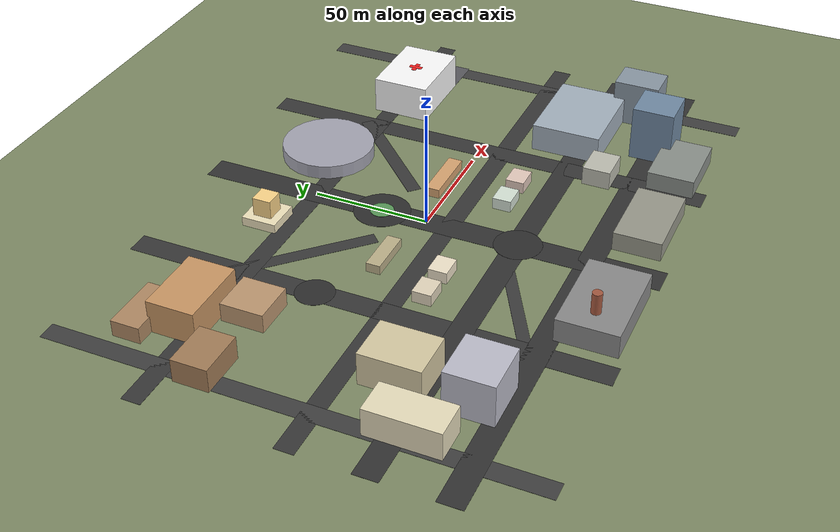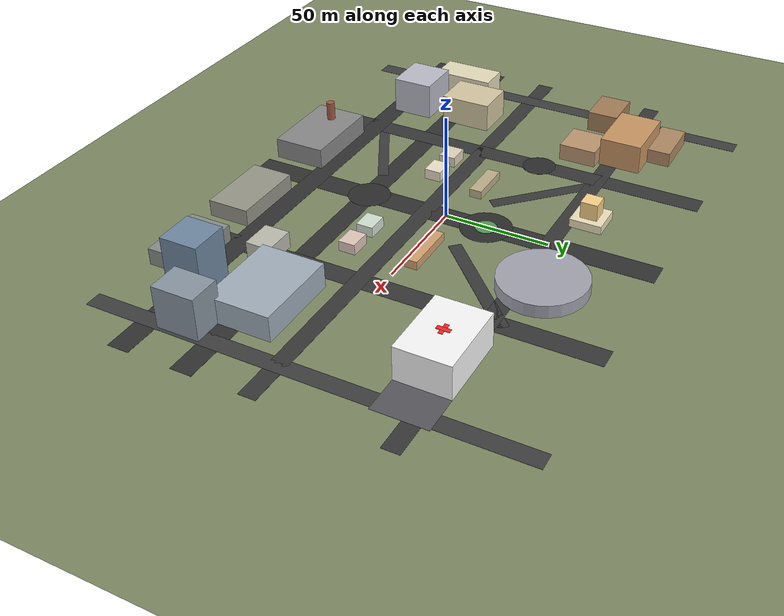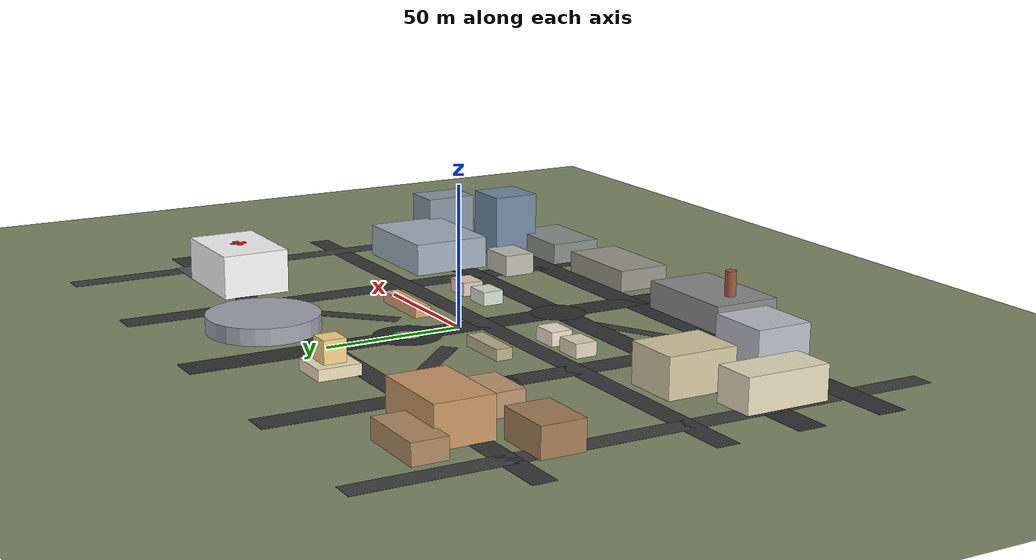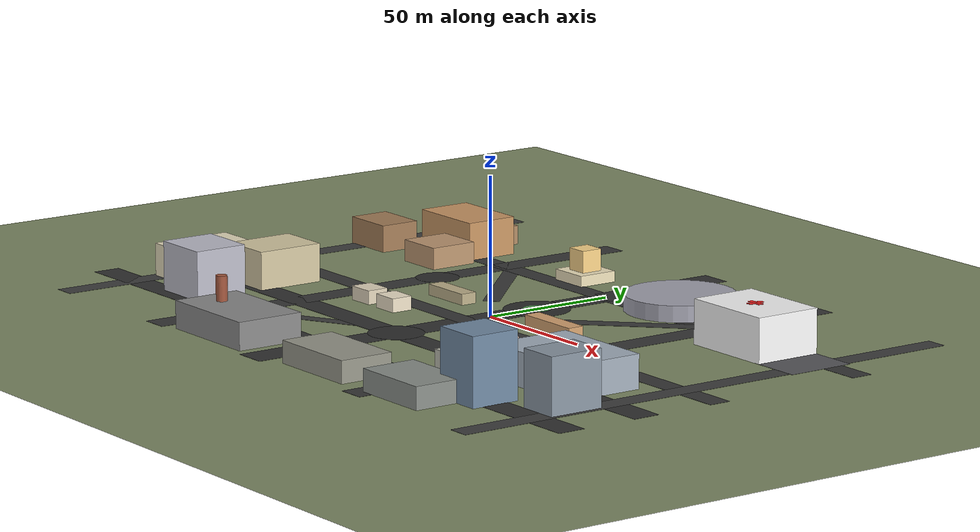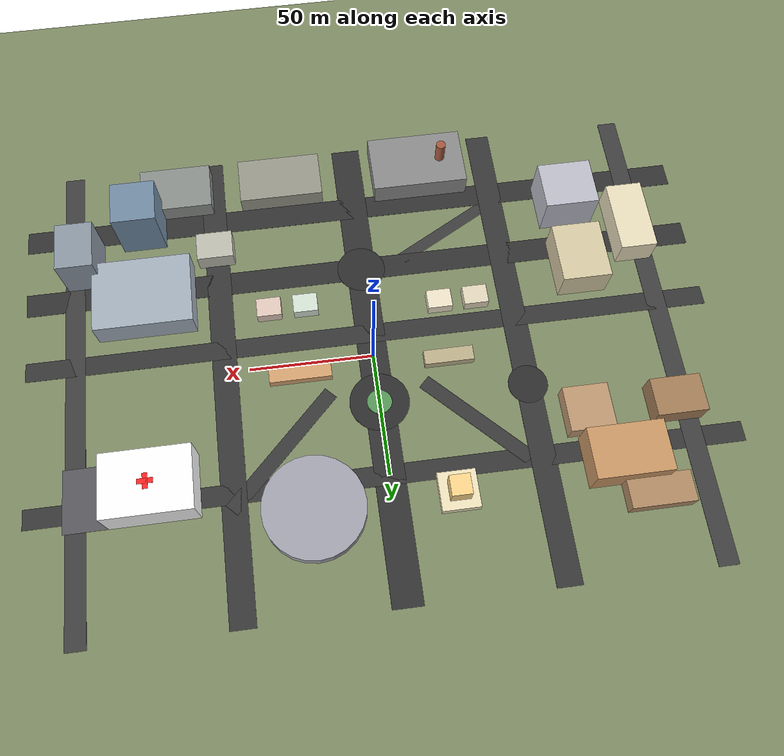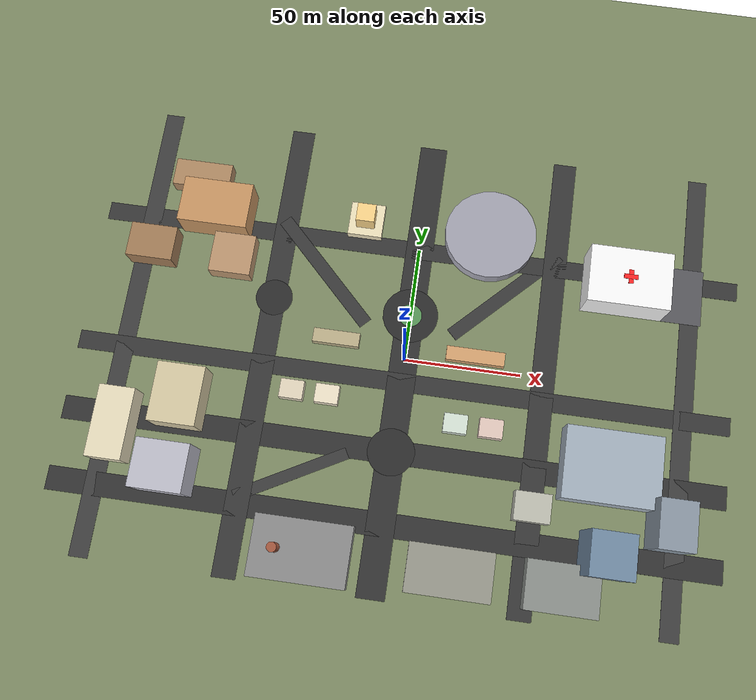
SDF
<sdf version="1.6">
 <world name="iiit_messy_road">
  <model name="ground_plane">
   <static>true</static>
   <link name="link">
    <collision name="collision">
     <geometry><plane><normal>0 0 1</normal><size>500 500</size></plane></geometry>
    </collision>
    <visual name="visual">
     <geometry><plane><normal>0 0 1</normal><size>500 500</size></plane></geometry>
     <material>
      <ambient>0.5 0.55 0.4 1</ambient>
      <diffuse>0.5 0.55 0.4 1</diffuse>
      <specular>0.1 0.1 0.1 1</specular>
     </material>
    </visual>
   </link>
  </model>
  <model name="rover_main">
   <pose>0 0 0.15 0 0 0</pose>
   <link name="chassis">
    <pose>0 0 0.15 0 0 0</pose>
    <collision name="collision"><geometry><box><size>0.6 0.4 0.2</size></box></geometry></collision>
    <visual name="visual">
     <geometry><box><size>0.6 0.4 0.2</size></box></geometry>
     <material><ambient>0.1 0.1 0.1 1</ambient><diffuse>0.15 0.15 0.15 1</diffuse></material>
    </visual>
   </link>
   <link name="wheel_fl">
    <pose>0.2 0.22 0.08 1.5708 0 0</pose>
    <collision name="collision">
     <geometry><cylinder><radius>0.08</radius><length>0.04</length></cylinder></geometry>
    </collision>
    <visual name="visual">
     <geometry><cylinder><radius>0.08</radius><length>0.04</length></cylinder></geometry>
     <material><ambient>0.2 0.2 0.2 1</ambient><diffuse>0.25 0.25 0.25 1</diffuse></material>
    </visual>
   </link>
   <link name="wheel_fr">
    <pose>0.2 -0.22 0.08 1.5708 0 0</pose>
    <collision name="collision">
     <geometry><cylinder><radius>0.08</radius><length>0.04</length></cylinder></geometry>
    </collision>
    <visual name="visual">
     <geometry><cylinder><radius>0.08</radius><length>0.04</length></cylinder></geometry>
     <material><ambient>0.2 0.2 0.2 1</ambient><diffuse>0.25 0.25 0.25 1</diffuse></material>
    </visual>
   </link>
   <link name="wheel_rl">
    <pose>-0.2 0.22 0.08 1.5708 0 0</pose>
    <collision name="collision">
     <geometry><cylinder><radius>0.08</radius><length>0.04</length></cylinder></geometry>
    </collision>
    <visual name="visual">
     <geometry><cylinder><radius>0.08</radius><length>0.04</length></cylinder></geometry>
     <material><ambient>0.2 0.2 0.2 1</ambient><diffuse>0.25 0.25 0.25 1</diffuse></material>
    </visual>
   </link>
   <link name="wheel_rr">
    <pose>-0.2 -0.22 0.08 1.5708 0 0</pose>
    <collision name="collision">
     <geometry><cylinder><radius>0.08</radius><length>0.04</length></cylinder></geometry>
    </collision>
    <visual name="visual">
     <geometry><cylinder><radius>0.08</radius><length>0.04</length></cylinder></geometry>
     <material><ambient>0.2 0.2 0.2 1</ambient><diffuse>0.25 0.25 0.25 1</diffuse></material>
    </visual>
   </link>
   <link name="sensor_tower">
    <pose>0 0 0.32 0 0 0</pose>
    <collision name="collision">
     <geometry><cylinder><radius>0.05</radius><length>0.15</length></cylinder></geometry>
    </collision>
    <visual name="visual">
     <geometry><cylinder><radius>0.05</radius><length>0.15</length></cylinder></geometry>
     <material><ambient>0.8 0.1 0.1 1</ambient><diffuse>0.9 0.15 0.15 1</diffuse></material>
    </visual>
   </link>
   <link name="camera">
    <pose>0.25 0 0.25 0 0 0</pose>
    <collision name="collision"><geometry><box><size>0.05 0.08 0.05</size></box></geometry></collision>
    <visual name="visual">
     <geometry><box><size>0.05 0.08 0.05</size></box></geometry>
     <material><ambient>0 0 0.5 1</ambient><diffuse>0 0 0.6 1</diffuse></material>
    </visual>
   </link>
  </model>
  <model name="main_avenue_ns">
   <static>true</static>
   <link name="link">
    <pose>0 0 0.05 0 0 0</pose>
    <collision name="collision"><geometry><box><size>12 200 0.1</size></box></geometry></collision>
    <visual name="visual">
     <geometry><box><size>12 200 0.1</size></box></geometry>
     <material><ambient>0.2 0.2 0.2 1</ambient><diffuse>0.2 0.2 0.2 1</diffuse></material>
    </visual>
   </link>
  </model>
  <model name="west_boulevard">
   <static>true</static>
   <link name="link">
    <pose>-60 0 0.05 0 0 0</pose>
    <collision name="collision"><geometry><box><size>10 200 0.1</size></box></geometry></collision>
    <visual name="visual">
     <geometry><box><size>10 200 0.1</size></box></geometry>
     <material><ambient>0.22 0.22 0.22 1</ambient><diffuse>0.22 0.22 0.22 1</diffuse></material>
    </visual>
   </link>
  </model>
  <model name="east_boulevard">
   <static>true</static>
   <link name="link">
    <pose>60 0 0.05 0 0 0</pose>
    <collision name="collision"><geometry><box><size>10 200 0.1</size></box></geometry></collision>
    <visual name="visual">
     <geometry><box><size>10 200 0.1</size></box></geometry>
     <material><ambient>0.22 0.22 0.22 1</ambient><diffuse>0.22 0.22 0.22 1</diffuse></material>
    </visual>
   </link>
  </model>
  <model name="far_west_road">
   <static>true</static>
   <link name="link">
    <pose>-120 0 0.05 0 0 0</pose>
    <collision name="collision"><geometry><box><size>8 200 0.1</size></box></geometry></collision>
    <visual name="visual">
     <geometry><box><size>8 200 0.1</size></box></geometry>
     <material><ambient>0.25 0.25 0.25 1</ambient><diffuse>0.25 0.25 0.25 1</diffuse></material>
    </visual>
   </link>
  </model>
  <model name="far_east_road">
   <static>true</static>
   <link name="link">
    <pose>120 0 0.05 0 0 0</pose>
    <collision name="collision"><geometry><box><size>8 200 0.1</size></box></geometry></collision>
    <visual name="visual">
     <geometry><box><size>8 200 0.1</size></box></geometry>
     <material><ambient>0.25 0.25 0.25 1</ambient><diffuse>0.25 0.25 0.25 1</diffuse></material>
    </visual>
   </link>
  </model>
  <model name="south_cross_road">
   <static>true</static>
   <link name="link">
    <pose>0 -40 0.05 0 0 0</pose>
    <collision name="collision"><geometry><box><size>280 10 0.1</size></box></geometry></collision>
    <visual name="visual">
     <geometry><box><size>280 10 0.1</size></box></geometry>
     <material><ambient>0.2 0.2 0.2 1</ambient><diffuse>0.2 0.2 0.2 1</diffuse></material>
    </visual>
   </link>
  </model>
  <model name="mid_south_road">
   <static>true</static>
   <link name="link">
    <pose>0 -10 0.05 0 0 0</pose>
    <collision name="collision"><geometry><box><size>280 8 0.1</size></box></geometry></collision>
    <visual name="visual">
     <geometry><box><size>280 8 0.1</size></box></geometry>
     <material><ambient>0.22 0.22 0.22 1</ambient><diffuse>0.22 0.22 0.22 1</diffuse></material>
    </visual>
   </link>
  </model>
  <model name="campus_inner_road">
   <static>true</static>
   <link name="link">
    <pose>0 50 0.05 0 0 0</pose>
    <collision name="collision"><geometry><box><size>280 8 0.1</size></box></geometry></collision>
    <visual name="visual">
     <geometry><box><size>280 8 0.1</size></box></geometry>
     <material><ambient>0.22 0.22 0.22 1</ambient><diffuse>0.22 0.22 0.22 1</diffuse></material>
    </visual>
   </link>
  </model>
  <model name="far_south_road">
   <static>true</static>
   <link name="link">
    <pose>0 -70 0.05 0 0 0</pose>
    <collision name="collision"><geometry><box><size>280 10 0.1</size></box></geometry></collision>
    <visual name="visual">
     <geometry><box><size>280 10 0.1</size></box></geometry>
     <material><ambient>0.2 0.2 0.2 1</ambient><diffuse>0.2 0.2 0.2 1</diffuse></material>
    </visual>
   </link>
  </model>
  <model name="diagonal_road_ne_sw">
   <static>true</static>
   <link name="link">
    <pose>40 35 0.05 0 0 0.785</pose>
    <collision name="collision"><geometry><box><size>60 6 0.1</size></box></geometry></collision>
    <visual name="visual">
     <geometry><box><size>60 6 0.1</size></box></geometry>
     <material><ambient>0.23 0.23 0.23 1</ambient><diffuse>0.23 0.23 0.23 1</diffuse></material>
    </visual>
   </link>
  </model>
  <model name="diagonal_road_nw_se">
   <static>true</static>
   <link name="link">
    <pose>-40 35 0.05 0 0 -0.785</pose>
    <collision name="collision"><geometry><box><size>60 6 0.1</size></box></geometry></collision>
    <visual name="visual">
     <geometry><box><size>60 6 0.1</size></box></geometry>
     <material><ambient>0.23 0.23 0.23 1</ambient><diffuse>0.23 0.23 0.23 1</diffuse></material>
    </visual>
   </link>
  </model>
  <model name="south_diagonal_connector">
   <static>true</static>
   <link name="link">
    <pose>-40 -55 0.05 0 0 0.5</pose>
    <collision name="collision"><geometry><box><size>50 5 0.1</size></box></geometry></collision>
    <visual name="visual">
     <geometry><box><size>50 5 0.1</size></box></geometry>
     <material><ambient>0.24 0.24 0.24 1</ambient><diffuse>0.24 0.24 0.24 1</diffuse></material>
    </visual>
   </link>
  </model>
  <model name="roundabout_central">
   <static>true</static>
   <link name="link">
    <pose>0 20 0.07 0 0 0</pose>
    <collision name="collision">
     <geometry><cylinder><radius>12</radius><length>0.1</length></cylinder></geometry>
    </collision>
    <visual name="visual">
     <geometry><cylinder><radius>12</radius><length>0.1</length></cylinder></geometry>
     <material><ambient>0.18 0.18 0.18 1</ambient><diffuse>0.18 0.18 0.18 1</diffuse></material>
    </visual>
   </link>
  </model>
  <model name="roundabout_island">
   <static>true</static>
   <link name="link">
    <pose>0 20 0.15 0 0 0</pose>
    <collision name="collision">
     <geometry><cylinder><radius>5</radius><length>0.2</length></cylinder></geometry>
    </collision>
    <visual name="visual">
     <geometry><cylinder><radius>5</radius><length>0.2</length></cylinder></geometry>
     <material><ambient>0.3 0.5 0.3 1</ambient><diffuse>0.35 0.6 0.35 1</diffuse></material>
    </visual>
   </link>
  </model>
  <model name="roundabout_south">
   <static>true</static>
   <link name="link">
    <pose>0 -40 0.07 0 0 0</pose>
    <collision name="collision">
     <geometry><cylinder><radius>10</radius><length>0.1</length></cylinder></geometry>
    </collision>
    <visual name="visual">
     <geometry><cylinder><radius>10</radius><length>0.1</length></cylinder></geometry>
     <material><ambient>0.18 0.18 0.18 1</ambient><diffuse>0.18 0.18 0.18 1</diffuse></material>
    </visual>
   </link>
  </model>
  <model name="junction_west">
   <static>true</static>
   <link name="link">
    <pose>-60 20 0.07 0 0 0</pose>
    <collision name="collision">
     <geometry><cylinder><radius>8</radius><length>0.1</length></cylinder></geometry>
    </collision>
    <visual name="visual">
     <geometry><cylinder><radius>8</radius><length>0.1</length></cylinder></geometry>
     <material><ambient>0.18 0.18 0.18 1</ambient><diffuse>0.18 0.18 0.18 1</diffuse></material>
    </visual>
   </link>
  </model>
  <model name="main_avenue_center_line">
   <static>true</static>
   <link name="link">
    <pose>0 0 0.08 0 0 0</pose>
    <visual name="visual">
     <geometry><box><size>0.15 200 0.01</size></box></geometry>
     <material><ambient>1 1 0 1</ambient><diffuse>1 1 0 1</diffuse></material>
    </visual>
   </link>
  </model>
  <model name="south_cross_center_line">
   <static>true</static>
   <link name="link">
    <pose>0 -40 0.08 0 0 0</pose>
    <visual name="visual">
     <geometry><box><size>280 0.15 0.01</size></box></geometry>
     <material><ambient>1 1 0 1</ambient><diffuse>1 1 0 1</diffuse></material>
    </visual>
   </link>
  </model>
  <model name="apartment_block_1">
   <static>true</static>
   <link name="link">
    <pose>-90 -30 7 0 0 0</pose>
    <collision name="collision"><geometry><box><size>20 25 14</size></box></geometry></collision>
    <visual name="visual">
     <geometry><box><size>20 25 14</size></box></geometry>
     <material><ambient>0.8 0.75 0.6 1</ambient><diffuse>0.85 0.8 0.65 1</diffuse></material>
    </visual>
   </link>
  </model>
  <model name="apartment_block_2">
   <static>true</static>
   <link name="link">
    <pose>-90 -60 9 0 0 0</pose>
    <collision name="collision"><geometry><box><size>22 20 18</size></box></geometry></collision>
    <visual name="visual">
     <geometry><box><size>22 20 18</size></box></geometry>
     <material><ambient>0.7 0.7 0.75 1</ambient><diffuse>0.75 0.75 0.8 1</diffuse></material>
    </visual>
   </link>
  </model>
  <model name="apartment_block_3">
   <static>true</static>
   <link name="link">
    <pose>-115 -45 6 0 0 0</pose>
    <collision name="collision"><geometry><box><size>15 30 12</size></box></geometry></collision>
    <visual name="visual">
     <geometry><box><size>15 30 12</size></box></geometry>
     <material><ambient>0.9 0.85 0.7 1</ambient><diffuse>0.92 0.88 0.75 1</diffuse></material>
    </visual>
   </link>
  </model>
  <model name="shopping_mall">
   <static>true</static>
   <link name="link">
    <pose>90 -35 6 0 0 0</pose>
    <collision name="collision"><geometry><box><size>40 30 12</size></box></geometry></collision>
    <visual name="visual">
     <geometry><box><size>40 30 12</size></box></geometry>
     <material><ambient>0.6 0.65 0.7 1</ambient><diffuse>0.65 0.7 0.75 1</diffuse></material>
    </visual>
   </link>
  </model>
  <model name="office_tower_1">
   <static>true</static>
   <link name="link">
    <pose>90 -70 12 0 0 0</pose>
    <collision name="collision"><geometry><box><size>18 18 24</size></box></geometry></collision>
    <visual name="visual">
     <geometry><box><size>18 18 24</size></box></geometry>
     <material><ambient>0.4 0.5 0.6 1</ambient><diffuse>0.45 0.55 0.65 1</diffuse></material>
    </visual>
   </link>
  </model>
  <model name="office_tower_2">
   <static>true</static>
   <link name="link">
    <pose>115 -55 10 0 0 0</pose>
    <collision name="collision"><geometry><box><size>15 20 20</size></box></geometry></collision>
    <visual name="visual">
     <geometry><box><size>15 20 20</size></box></geometry>
     <material><ambient>0.5 0.55 0.6 1</ambient><diffuse>0.55 0.6 0.65 1</diffuse></material>
    </visual>
   </link>
  </model>
  <model name="bank_building">
   <static>true</static>
   <link name="link">
    <pose>60 -55 4 0 0 0</pose>
    <collision name="collision"><geometry><box><size>15 12 8</size></box></geometry></collision>
    <visual name="visual">
     <geometry><box><size>15 12 8</size></box></geometry>
     <material><ambient>0.7 0.7 0.65 1</ambient><diffuse>0.75 0.75 0.7 1</diffuse></material>
    </visual>
   </link>
  </model>
  <model name="hospital_main">
   <static>true</static>
   <link name="link">
    <pose>90 45 8 0 0 0</pose>
    <collision name="collision"><geometry><box><size>35 25 16</size></box></geometry></collision>
    <visual name="visual">
     <geometry><box><size>35 25 16</size></box></geometry>
     <material><ambient>0.95 0.95 0.95 1</ambient><diffuse>1 1 1 1</diffuse></material>
    </visual>
   </link>
  </model>
  <model name="hospital_cross_h">
   <static>true</static>
   <link name="link">
    <pose>90 45 16.1 0 0 0</pose>
    <visual name="visual">
     <geometry><box><size>6 2 0.2</size></box></geometry>
     <material><ambient>0.9 0.1 0.1 1</ambient><diffuse>1 0.15 0.15 1</diffuse></material>
    </visual>
   </link>
  </model>
  <model name="hospital_cross_v">
   <static>true</static>
   <link name="link">
    <pose>90 45 16.1 0 0 1.5708</pose>
    <visual name="visual">
     <geometry><box><size>6 2 0.2</size></box></geometry>
     <material><ambient>0.9 0.1 0.1 1</ambient><diffuse>1 0.15 0.15 1</diffuse></material>
    </visual>
   </link>
  </model>
  <model name="hospital_parking">
   <static>true</static>
   <link name="link">
    <pose>115 45 0.06 0 0 0</pose>
    <collision name="collision"><geometry><box><size>20 25 0.1</size></box></geometry></collision>
    <visual name="visual">
     <geometry><box><size>20 25 0.1</size></box></geometry>
     <material><ambient>0.3 0.3 0.32 1</ambient><diffuse>0.35 0.35 0.37 1</diffuse></material>
    </visual>
   </link>
  </model>
  <model name="university_main_hall">
   <static>true</static>
   <link name="link">
    <pose>-90 55 7 0 0 0</pose>
    <collision name="collision"><geometry><box><size>30 20 14</size></box></geometry></collision>
    <visual name="visual">
     <geometry><box><size>30 20 14</size></box></geometry>
     <material><ambient>0.75 0.55 0.35 1</ambient><diffuse>0.8 0.6 0.4 1</diffuse></material>
    </visual>
   </link>
  </model>
  <model name="library_building">
   <static>true</static>
   <link name="link">
    <pose>-115 35 5 0 0 0</pose>
    <collision name="collision"><geometry><box><size>20 15 10</size></box></geometry></collision>
    <visual name="visual">
     <geometry><box><size>20 15 10</size></box></geometry>
     <material><ambient>0.6 0.45 0.3 1</ambient><diffuse>0.65 0.5 0.35 1</diffuse></material>
    </visual>
   </link>
  </model>
  <model name="lecture_hall">
   <static>true</static>
   <link name="link">
    <pose>-80 35 4 0 0 0</pose>
    <collision name="collision"><geometry><box><size>18 18 8</size></box></geometry></collision>
    <visual name="visual">
     <geometry><box><size>18 18 8</size></box></geometry>
     <material><ambient>0.7 0.55 0.4 1</ambient><diffuse>0.75 0.6 0.45 1</diffuse></material>
    </visual>
   </link>
  </model>
  <model name="student_center">
   <static>true</static>
   <link name="link">
    <pose>-100 70 3.5 0 0 0</pose>
    <collision name="collision"><geometry><box><size>25 12 7</size></box></geometry></collision>
    <visual name="visual">
     <geometry><box><size>25 12 7</size></box></geometry>
     <material><ambient>0.65 0.5 0.35 1</ambient><diffuse>0.7 0.55 0.4 1</diffuse></material>
    </visual>
   </link>
  </model>
  <model name="factory_1">
   <static>true</static>
   <link name="link">
    <pose>-30 -85 5 0 0 0</pose>
    <collision name="collision"><geometry><box><size>40 25 10</size></box></geometry></collision>
    <visual name="visual">
     <geometry><box><size>40 25 10</size></box></geometry>
     <material><ambient>0.5 0.5 0.5 1</ambient><diffuse>0.55 0.55 0.55 1</diffuse></material>
    </visual>
   </link>
  </model>
  <model name="factory_chimney_1">
   <static>true</static>
   <link name="link">
    <pose>-40 -85 12 0 0 0</pose>
    <collision name="collision">
     <geometry><cylinder><radius>2</radius><length>14</length></cylinder></geometry>
    </collision>
    <visual name="visual">
     <geometry><cylinder><radius>2</radius><length>14</length></cylinder></geometry>
     <material><ambient>0.6 0.3 0.2 1</ambient><diffuse>0.65 0.35 0.25 1</diffuse></material>
    </visual>
   </link>
  </model>
  <model name="warehouse_1">
   <static>true</static>
   <link name="link">
    <pose>30 -85 4 0 0 0</pose>
    <collision name="collision"><geometry><box><size>35 20 8</size></box></geometry></collision>
    <visual name="visual">
     <geometry><box><size>35 20 8</size></box></geometry>
     <material><ambient>0.55 0.55 0.5 1</ambient><diffuse>0.6 0.6 0.55 1</diffuse></material>
    </visual>
   </link>
  </model>
  <model name="warehouse_2">
   <static>true</static>
   <link name="link">
    <pose>75 -85 4 0 0 0</pose>
    <collision name="collision"><geometry><box><size>30 20 8</size></box></geometry></collision>
    <visual name="visual">
     <geometry><box><size>30 20 8</size></box></geometry>
     <material><ambient>0.5 0.52 0.5 1</ambient><diffuse>0.55 0.57 0.55 1</diffuse></material>
    </visual>
   </link>
  </model>
  <model name="house_1">
   <static>true</static>
   <link name="link">
    <pose>-30 -20 2.5 0 0 0</pose>
    <collision name="collision"><geometry><box><size>10 8 5</size></box></geometry></collision>
    <visual name="visual">
     <geometry><box><size>10 8 5</size></box></geometry>
     <material><ambient>0.9 0.85 0.75 1</ambient><diffuse>0.95 0.9 0.8 1</diffuse></material>
    </visual>
   </link>
  </model>
  <model name="house_2">
   <static>true</static>
   <link name="link">
    <pose>-45 -20 2.5 0 0 0</pose>
    <collision name="collision"><geometry><box><size>10 8 5</size></box></geometry></collision>
    <visual name="visual">
     <geometry><box><size>10 8 5</size></box></geometry>
     <material><ambient>0.85 0.8 0.7 1</ambient><diffuse>0.9 0.85 0.75 1</diffuse></material>
    </visual>
   </link>
  </model>
  <model name="house_3">
   <static>true</static>
   <link name="link">
    <pose>25 -25 2.5 0 0 0</pose>
    <collision name="collision"><geometry><box><size>10 8 5</size></box></geometry></collision>
    <visual name="visual">
     <geometry><box><size>10 8 5</size></box></geometry>
     <material><ambient>0.8 0.85 0.8 1</ambient><diffuse>0.85 0.9 0.85 1</diffuse></material>
    </visual>
   </link>
  </model>
  <model name="house_4">
   <static>true</static>
   <link name="link">
    <pose>40 -25 2.5 0 0 0</pose>
    <collision name="collision"><geometry><box><size>10 8 5</size></box></geometry></collision>
    <visual name="visual">
     <geometry><box><size>10 8 5</size></box></geometry>
     <material><ambient>0.85 0.75 0.7 1</ambient><diffuse>0.9 0.8 0.75 1</diffuse></material>
    </visual>
   </link>
  </model>
  <model name="shop_row_1">
   <static>true</static>
   <link name="link">
    <pose>30 5 2 0 0 0</pose>
    <collision name="collision"><geometry><box><size>25 6 4</size></box></geometry></collision>
    <visual name="visual">
     <geometry><box><size>25 6 4</size></box></geometry>
     <material><ambient>0.8 0.6 0.4 1</ambient><diffuse>0.85 0.65 0.45 1</diffuse></material>
    </visual>
   </link>
  </model>
  <model name="shop_row_2">
   <static>true</static>
   <link name="link">
    <pose>-30 5 2 0 0 0</pose>
    <collision name="collision"><geometry><box><size>20 6 4</size></box></geometry></collision>
    <visual name="visual">
     <geometry><box><size>20 6 4</size></box></geometry>
     <material><ambient>0.7 0.65 0.5 1</ambient><diffuse>0.75 0.7 0.55 1</diffuse></material>
    </visual>
   </link>
  </model>
  <model name="temple_base">
   <static>true</static>
   <link name="link">
    <pose>-25 60 2 0 0 0</pose>
    <collision name="collision"><geometry><box><size>15 15 4</size></box></geometry></collision>
    <visual name="visual">
     <geometry><box><size>15 15 4</size></box></geometry>
     <material><ambient>0.9 0.85 0.7 1</ambient><diffuse>0.95 0.9 0.75 1</diffuse></material>
    </visual>
   </link>
  </model>
  <model name="temple_tower">
   <static>true</static>
   <link name="link">
    <pose>-25 60 8 0 0 0</pose>
    <collision name="collision"><geometry><box><size>8 8 8</size></box></geometry></collision>
    <visual name="visual">
     <geometry><box><size>8 8 8</size></box></geometry>
     <material><ambient>0.95 0.8 0.5 1</ambient><diffuse>1 0.85 0.55 1</diffuse></material>
    </visual>
   </link>
  </model>
  <model name="stadium">
   <static>true</static>
   <link name="outer_ring">
    <pose>30 60 3 0 0 0</pose>
    <collision name="collision">
     <geometry><cylinder><radius>20</radius><length>6</length></cylinder></geometry>
    </collision>
    <visual name="visual">
     <geometry><cylinder><radius>20</radius><length>6</length></cylinder></geometry>
     <material><ambient>0.6 0.6 0.65 1</ambient><diffuse>0.65 0.65 0.7 1</diffuse></material>
    </visual>
   </link>
  </model>
  <model name="stadium_field">
   <static>true</static>
   <link name="link">
    <pose>30 60 0.08 0 0 0</pose>
    <collision name="collision">
     <geometry><cylinder><radius>15</radius><length>0.1</length></cylinder></geometry>
    </collision>
    <visual name="visual">
     <geometry><cylinder><radius>15</radius><length>0.1</length></cylinder></geometry>
     <material><ambient>0.2 0.6 0.2 1</ambient><diffuse>0.25 0.7 0.25 1</diffuse></material>
    </visual>
   </link>
  </model>
 </world>
</sdf>
